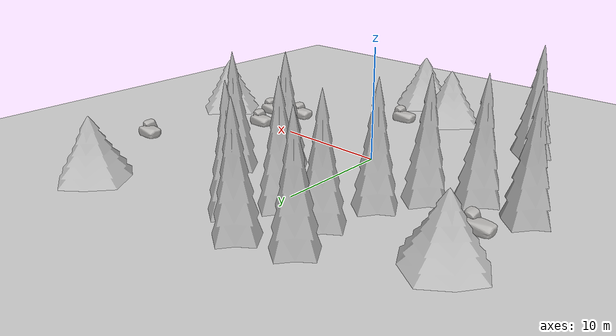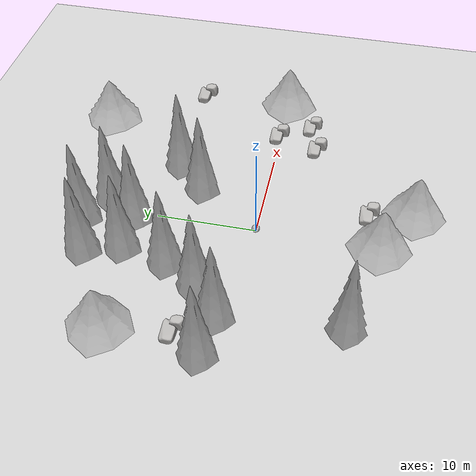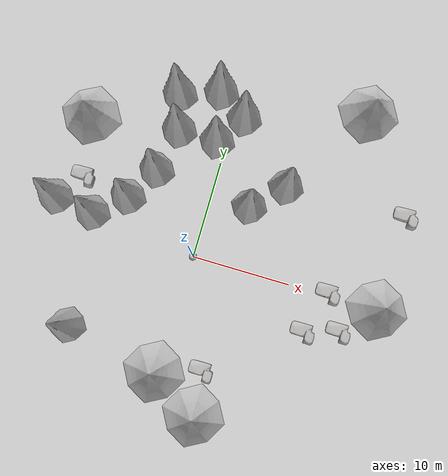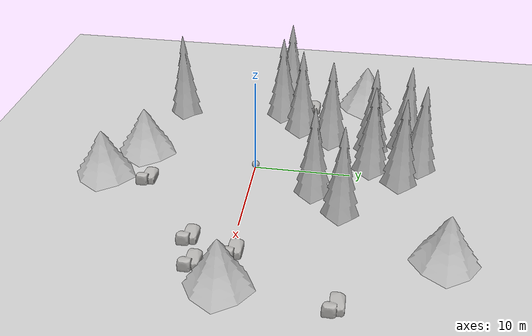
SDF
<?xml version="1.0"?>
<sdf version="1.4">
  <world name="my_world">
    <physics type="ode">
      <gravity>0 0 -9.8</gravity>
        <max_step_size>0.001</max_step_size>
    </physics>

    <scene>
      <sky>
        <clouds>
          <speed>12</speed>
        </clouds>
      </sky>
    </scene>

    <gui>
      <camera name="my_camera">
        <pose>3 0.1 1.5 0 0 3.14</pose>
      </camera>
    </gui>

    <include>
      <uri>model://ground_plane</uri>
    </include>

    <include>
      <uri>model://sun</uri>
    </include>

    <include>
      <name>human</name>
      <uri>model://sphere</uri>
      <pose>0 0 0 0 0 0</pose>
    </include>

    <include>
      <name>rock1</name>
      <uri>model://rock</uri>
      <pose>12.59 -4 0 0 0 0</pose>
    </include>

    <include>
      <name>rock2</name>
      <uri>model://rock</uri>
      <pose>15.99 -3 0 0 0 0</pose>
    </include>

  <include>
      <name>rock3</name>
      <uri>model://rock</uri>
      <pose>13.99 0.42 0 0 0 0</pose>
    </include>

  <include>
      <name>bigtree4</name>
      <uri>model://bigtree</uri>
      <pose>-14 10.99 0 0 0 0</pose>
    </include>

  <include>
      <name>tree5</name>
      <uri>model://tree</uri>
      <pose>-6 7.4 0 0 0 0</pose>
    </include>

  <include>
      <name>tree6</name>
      <uri>model://tree</uri>
      <pose>-8 3.99 0 0 0 0</pose>
    </include>

  <include>
      <name>tree7</name>
      <uri>model://tree</uri>
      <pose>-10.99 1.46 0 0 0 0</pose>
    </include>

  <include>
      <name>tree8</name>
      <uri>model://tree</uri>
      <pose>-15 1.99 0 0 0 0</pose>
    </include>

  <include>
      <name>rock9</name>
      <uri>model://rock</uri>
      <pose>-13 4.99 0 0 0 0</pose>
    </include>

  <include>
      <name>tree10</name>
      <uri>model://tree</uri>
      <pose>6.99 9.4 0 0 0 0</pose>
    </include>

  <include>
      <name>tree11</name>
      <uri>model://tree</uri>
      <pose>3.99 6.46 0 0 0 0</pose>
    </include>

 <include>
      <name>tree12</name>
      <uri>model://tree</uri>
      <pose>-10 -10 0 0 0 0</pose>
    </include>

 <include>
      <name>tree13</name>
      <uri>model://tree</uri>
      <pose>-2 16.99 0 0 0 0</pose>
    </include>

 <include>
      <name>bigtree14</name>
      <uri>model://bigtree</uri>
      <pose>19 0 0 0 0 0</pose>
    </include>

 <include>
      <name>tree15</name>
      <uri>model://tree</uri>
      <pose>0.99 14.99 0 0 0 0</pose>
    </include>

 <include>
      <name>tree16</name>
      <uri>model://tree</uri>
      <pose>-1 11.99 0 0 0 0</pose>
    </include>
 <include>
      <name>tree17</name>
      <uri>model://tree</uri>
      <pose>-5 11.99 0 0 0 0</pose>
    </include>

 <include>
      <name>tree18</name>
      <uri>model://tree</uri>
      <pose>-5.99 15.6 0 0 0 0</pose>
    </include>

    <include>
      <name>bigtree19</name>
      <uri>model://bigtree</uri>
      <pose>13 18.99 0 0 0 0</pose>
    </include>

    <include>
      <name>rock20</name>
      <uri>model://rock</uri>
      <pose>19.47 9.99 0 0 0 0</pose>
    </include>

    <include>
      <name>bigtree21</name>
      <uri>model://bigtree</uri>
      <pose>-0.45 -12.0 0 0 0 0</pose>
    </include>

    <include>
      <name>bigtree22</name>
      <uri>model://bigtree</uri>
      <pose>4.48 -15.0 0 0 0 0</pose>
    </include>

     <include>
      <name>rock23</name>
      <uri>model://rock</uri>
      <pose>4 -10.49 0 0 0 0</pose>
    </include>

  </world>
</sdf>

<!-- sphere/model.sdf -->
<sdf version="1.5">
  <model name="sphere_model">
    <link name="sphere_link">
      <inertial>
        <mass>0.390</mass>
        <inertia>
          <ixx>0.00058</ixx>
          <ixy>0</ixy>
          <ixz>0</ixz>
          <iyy>0.00058</iyy>
          <iyz>0</iyz>
          <izz>0.00019</izz>
        </inertia>
      </inertial>
      <collision name="sphere_collision">
        <geometry>
          <mesh>
            <uri>model://sphere/meshes/sphere.dae</uri>
          </mesh>
        </geometry>
        <surface>
          <friction>
            <ode>
              <mu>1.0</mu>
              <mu2>1.0</mu2>
            </ode>
          </friction>
          <contact>
            <ode>
              <kp>10000000.0</kp>
              <kd>1.0</kd>
              <min_depth>0.001</min_depth>
              <max_vel>0.1</max_vel>
            </ode>
          </contact>
        </surface>
      </collision>
      <visual name="sphere_visual">
        <geometry>
          <mesh>
            <uri>model://sphere/meshes/sphere.dae</uri>
          </mesh>
        </geometry>
      </visual>
    </link>
  </model>
</sdf>

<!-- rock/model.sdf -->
<sdf version="1.5">
  <model name="rock_model">
    <static>
      true
    </static>
    <link name="rock_link">
      <inertial>
        <mass>0.390</mass>
        <inertia>
          <ixx>0.00058</ixx>
          <ixy>0</ixy>
          <ixz>0</ixz>
          <iyy>0.00058</iyy>
          <iyz>0</iyz>
          <izz>0.00019</izz>
        </inertia>
      </inertial>
      <collision name="rock_collision">
        <geometry>
          <mesh>
            <uri>model://rock/meshes/rock.dae</uri>
          </mesh>
        </geometry>
        <surface>
          <friction>
            <ode>
              <mu>1.0</mu>
              <mu2>1.0</mu2>
            </ode>
          </friction>
          <contact>
            <ode>
              <kp>10000000.0</kp>
              <kd>1.0</kd>
              <min_depth>0.001</min_depth>
              <max_vel>0.1</max_vel>
            </ode>
          </contact>
        </surface>
      </collision>
      <visual name="rock_visual">
        <geometry>
          <mesh>
            <uri>model://rock/meshes/rock.dae</uri>
          </mesh>
        </geometry>
      </visual>
    </link>
  </model>
</sdf>

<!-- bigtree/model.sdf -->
<sdf version="1.5">
  <model name="bigtree_model">
<static>
true
</static>
    <link name="bigtree_link">
      <inertial>
        <mass>0.390</mass>
        <inertia>
          <ixx>0.00058</ixx>
          <ixy>0</ixy>
          <ixz>0</ixz>
          <iyy>0.00058</iyy>
          <iyz>0</iyz>
          <izz>0.00019</izz>
        </inertia>
      </inertial>
      <collision name="bigtree_collision">
        <geometry>
          <mesh>
            <uri>model://bigtree/meshes/tanne2.dae</uri>
          </mesh>
        </geometry>
        <surface>
          <friction>
            <ode>
              <mu>1.0</mu>
              <mu2>1.0</mu2>
            </ode>
          </friction>
          <contact>
            <ode>
              <kp>10000000.0</kp>
              <kd>1.0</kd>
              <min_depth>0.001</min_depth>
              <max_vel>0.1</max_vel>
            </ode>
          </contact>
        </surface>
      </collision>
      <visual name="bigtree_visual">
        <geometry>
          <mesh>
            <uri>model://bigtree/meshes/tanne2.dae</uri>
          </mesh>
        </geometry>
      </visual>
    </link>
  </model>
</sdf>

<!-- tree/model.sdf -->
<sdf version="1.5">
  <model name="tree_model">
<static>
  true
</static>
    <link name="tree_link">
      <inertial>
        <mass>0.390</mass>
        <inertia>
          <ixx>0.00058</ixx>
          <ixy>0</ixy>
          <ixz>0</ixz>
          <iyy>0.00058</iyy>
          <iyz>0</iyz>
          <izz>0.00019</izz>
        </inertia>
      </inertial>
      <collision name="tree_collision">
        <geometry>
          <mesh>
            <uri>model://tree/meshes/tanne1.dae</uri>
          </mesh>
        </geometry>
        <surface>
          <friction>
            <ode>
              <mu>1.0</mu>
              <mu2>1.0</mu2>
            </ode>
          </friction>
          <contact>
            <ode>
              <kp>10000000.0</kp>
              <kd>1.0</kd>
              <min_depth>0.001</min_depth>
              <max_vel>0.1</max_vel>
            </ode>
          </contact>
        </surface>
      </collision>
      <visual name="tree_visual">
        <geometry>
          <mesh>
            <uri>model://tree/meshes/tanne1.dae</uri>
          </mesh>
        </geometry>
      </visual>
    </link>
  </model>
</sdf>
